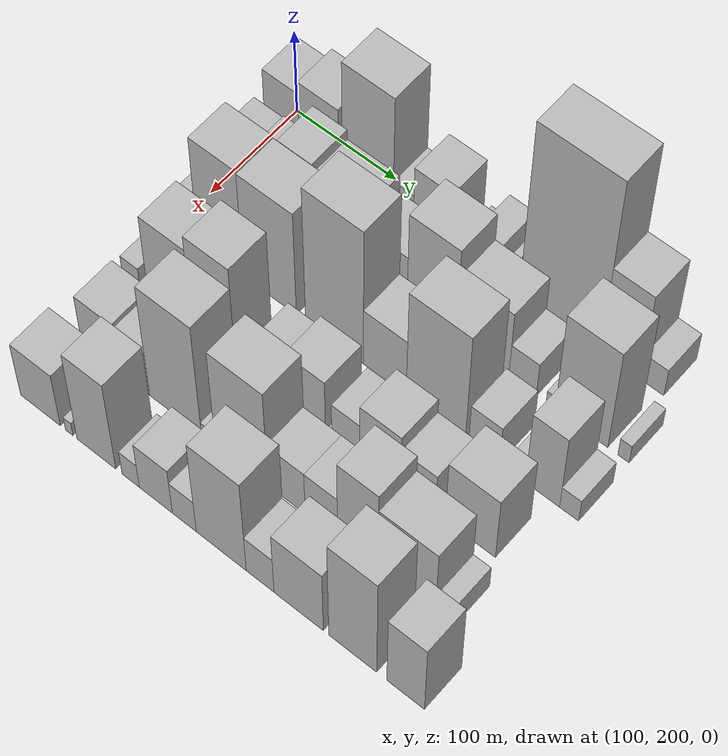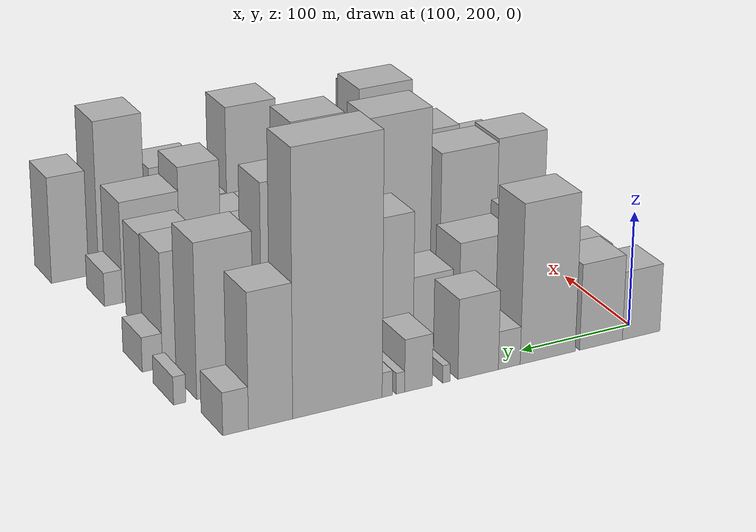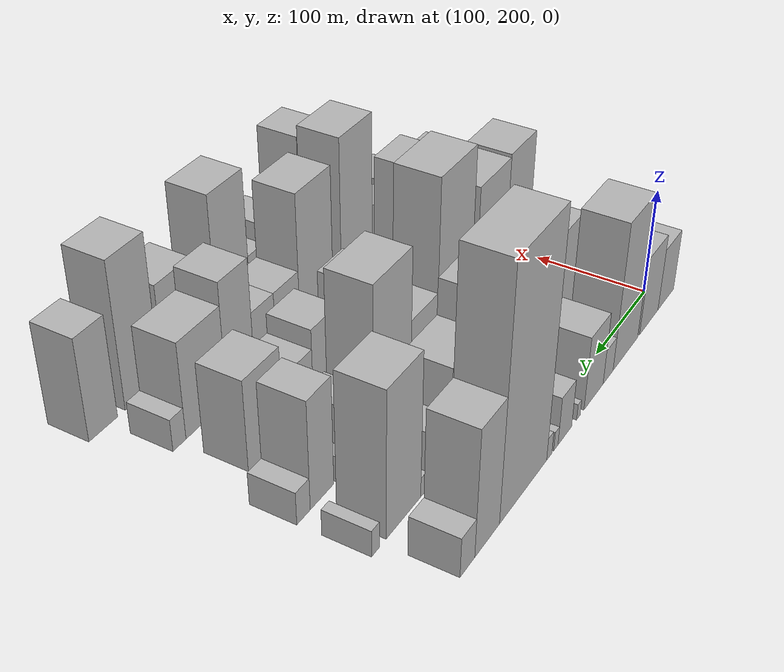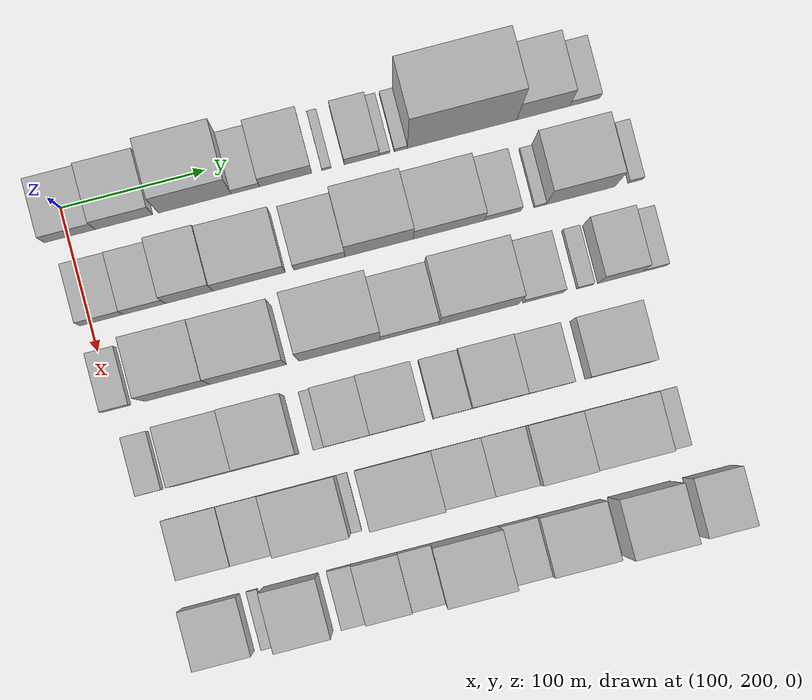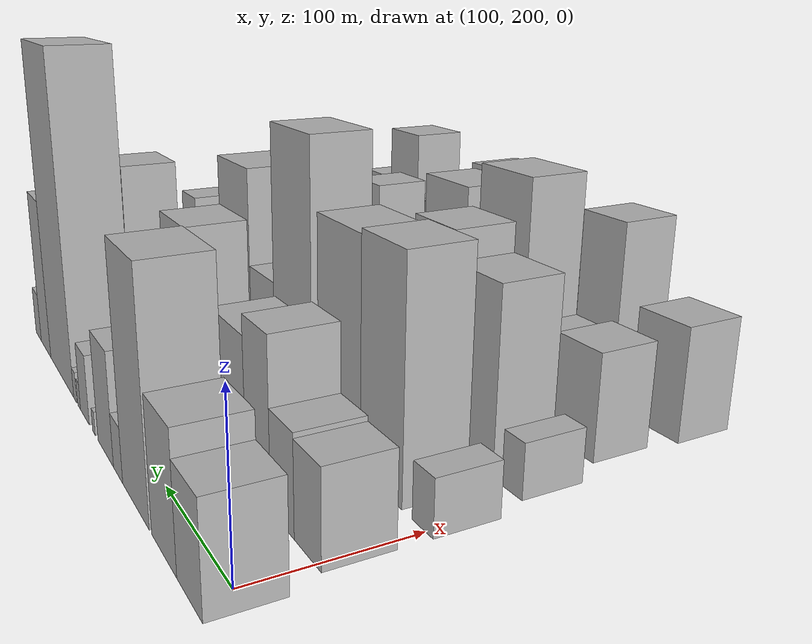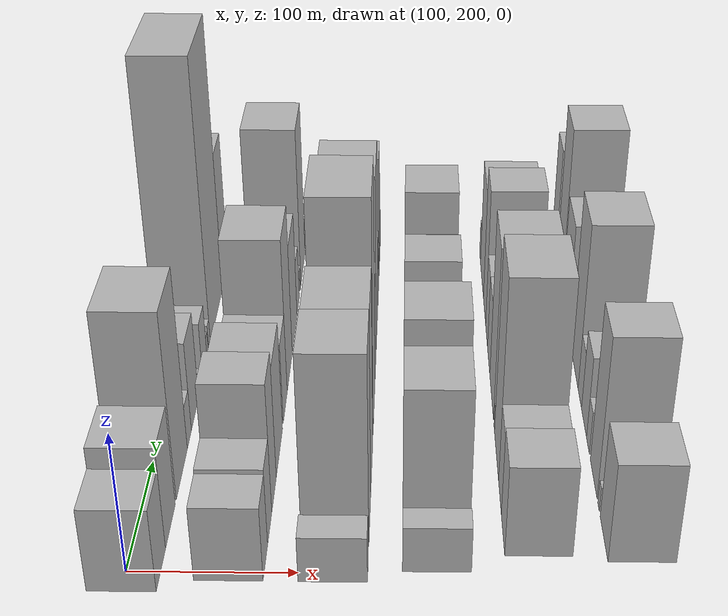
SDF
<sdf version="1.6">
 <world name="default">
  <model name="building_32">
   <static>1</static>
   <pose>100.0000 201.4124 0 0.000000 0.000000 0.000000</pose>
   <link name="link">
    <pose>0 0 30.00 0 0 0</pose>
    <collision name="collision"><geometry><box><size>40.0000 35.3995 60.0000</size></box></geometry></collision>
    <visual name="visual">
     <cast_shadows>0</cast_shadows>
     <geometry><box><size>40.0000 35.3995 60.0000</size></box></geometry>
     <material>
      <script>
       <uri>model://HANNAS_wall/materials/scripts</uri>
       <uri>model://HANNAS_wall/materials/textures</uri>
       <name>vrc/HANNAS_wall</name>
      </script>
     </material>
    </visual>
   </link>
  </model>
  <model name="building_33">
   <static>1</static>
   <pose>100.0000 239.0206 0 0.000000 0.000000 0.000000</pose>
   <link name="link">
    <pose>0 0 37.50 0 0 0</pose>
    <collision name="collision"><geometry><box><size>40.0000 39.8168 75.0000</size></box></geometry></collision>
    <visual name="visual">
     <cast_shadows>0</cast_shadows>
     <geometry><box><size>40.0000 39.8168 75.0000</size></box></geometry>
     <material>
      <script>
       <uri>model://HANNAS_wall/materials/scripts</uri>
       <uri>model://HANNAS_wall/materials/textures</uri>
       <name>vrc/HANNAS_wall</name>
      </script>
     </material>
    </visual>
   </link>
  </model>
  <model name="building_34">
   <static>1</static>
   <pose>100.0000 288.0815 0 0.000000 0.000000 0.000000</pose>
   <link name="link">
    <pose>0 0 69.00 0 0 0</pose>
    <collision name="collision"><geometry><box><size>40.0000 50.3052 138.0000</size></box></geometry></collision>
    <visual name="visual">
     <cast_shadows>0</cast_shadows>
     <geometry><box><size>40.0000 50.3052 138.0000</size></box></geometry>
     <material>
      <script>
       <uri>model://HANNAS_wall/materials/scripts</uri>
       <uri>model://HANNAS_wall/materials/textures</uri>
       <name>vrc/HANNAS_wall</name>
      </script>
     </material>
    </visual>
   </link>
  </model>
  <model name="building_35">
   <static>1</static>
   <pose>100.0000 323.0292 0 0.000000 0.000000 0.000000</pose>
   <link name="link">
    <pose>0 0 16.50 0 0 0</pose>
    <collision name="collision"><geometry><box><size>40.0000 19.5901 33.0000</size></box></geometry></collision>
    <visual name="visual">
     <cast_shadows>0</cast_shadows>
     <geometry><box><size>40.0000 19.5901 33.0000</size></box></geometry>
     <material>
      <script>
       <uri>model://HANNAS_wall/materials/scripts</uri>
       <uri>model://HANNAS_wall/materials/textures</uri>
       <name>vrc/HANNAS_wall</name>
      </script>
     </material>
    </visual>
   </link>
  </model>
  <model name="building_36">
   <static>1</static>
   <pose>100.0000 350.8618 0 0.000000 0.000000 0.000000</pose>
   <link name="link">
    <pose>0 0 34.50 0 0 0</pose>
    <collision name="collision"><geometry><box><size>40.0000 36.0752 69.0000</size></box></geometry></collision>
    <visual name="visual">
     <cast_shadows>0</cast_shadows>
     <geometry><box><size>40.0000 36.0752 69.0000</size></box></geometry>
     <material>
      <script>
       <uri>model://HANNAS_wall/materials/scripts</uri>
       <uri>model://HANNAS_wall/materials/textures</uri>
       <name>vrc/HANNAS_wall</name>
      </script>
     </material>
    </visual>
   </link>
  </model>
  <model name="building_37">
   <static>1</static>
   <pose>100.0000 379.1354 0 0.000000 0.000000 0.000000</pose>
   <link name="link">
    <pose>0 0 7.50 0 0 0</pose>
    <collision name="collision"><geometry><box><size>40.0000 6.4720 15.0000</size></box></geometry></collision>
    <visual name="visual">
     <cast_shadows>0</cast_shadows>
     <geometry><box><size>40.0000 6.4720 15.0000</size></box></geometry>
     <material>
      <script>
       <uri>model://HANNAS_wall/materials/scripts</uri>
       <uri>model://HANNAS_wall/materials/textures</uri>
       <name>vrc/HANNAS_wall</name>
      </script>
     </material>
    </visual>
   </link>
  </model>
  <model name="building_38">
   <static>1</static>
   <pose>100.0000 403.4569 0 0.000000 0.000000 0.000000</pose>
   <link name="link">
    <pose>0 0 22.50 0 0 0</pose>
    <collision name="collision"><geometry><box><size>40.0000 24.1709 45.0000</size></box></geometry></collision>
    <visual name="visual">
     <cast_shadows>0</cast_shadows>
     <geometry><box><size>40.0000 24.1709 45.0000</size></box></geometry>
     <material>
      <script>
       <uri>model://HANNAS_wall/materials/scripts</uri>
       <uri>model://HANNAS_wall/materials/textures</uri>
       <name>vrc/HANNAS_wall</name>
      </script>
     </material>
    </visual>
   </link>
  </model>
  <model name="building_39">
   <static>1</static>
   <pose>100.0000 419.2504 0 0.000000 0.000000 0.000000</pose>
   <link name="link">
    <pose>0 0 9.00 0 0 0</pose>
    <collision name="collision"><geometry><box><size>40.0000 7.4161 18.0000</size></box></geometry></collision>
    <visual name="visual">
     <cast_shadows>0</cast_shadows>
     <geometry><box><size>40.0000 7.4161 18.0000</size></box></geometry>
     <material>
      <script>
       <uri>model://HANNAS_wall/materials/scripts</uri>
       <uri>model://HANNAS_wall/materials/textures</uri>
       <name>vrc/HANNAS_wall</name>
      </script>
     </material>
    </visual>
   </link>
  </model>
  <model name="building_40">
   <static>1</static>
   <pose>100.0000 430.4653 0 0.000000 0.000000 0.000000</pose>
   <link name="link">
    <pose>0 0 10.50 0 0 0</pose>
    <collision name="collision"><geometry><box><size>40.0000 9.0136 21.0000</size></box></geometry></collision>
    <visual name="visual">
     <cast_shadows>0</cast_shadows>
     <geometry><box><size>40.0000 9.0136 21.0000</size></box></geometry>
     <material>
      <script>
       <uri>model://HANNAS_wall/materials/scripts</uri>
       <uri>model://HANNAS_wall/materials/textures</uri>
       <name>vrc/HANNAS_wall</name>
      </script>
     </material>
    </visual>
   </link>
  </model>
  <model name="building_41">
   <static>1</static>
   <pose>100.0000 472.8589 0 0.000000 0.000000 0.000000</pose>
   <link name="link">
    <pose>0 0 111.00 0 0 0</pose>
    <collision name="collision"><geometry><box><size>40.0000 75.7737 222.0000</size></box></geometry></collision>
    <visual name="visual">
     <cast_shadows>0</cast_shadows>
     <geometry><box><size>40.0000 75.7737 222.0000</size></box></geometry>
     <material>
      <script>
       <uri>model://HANNAS_wall/materials/scripts</uri>
       <uri>model://HANNAS_wall/materials/textures</uri>
       <name>vrc/HANNAS_wall</name>
      </script>
     </material>
    </visual>
   </link>
  </model>
  <model name="building_42">
   <static>1</static>
   <pose>100.0000 529.0501 0 0.000000 0.000000 0.000000</pose>
   <link name="link">
    <pose>0 0 57.00 0 0 0</pose>
    <collision name="collision"><geometry><box><size>40.0000 36.6088 114.0000</size></box></geometry></collision>
    <visual name="visual">
     <cast_shadows>0</cast_shadows>
     <geometry><box><size>40.0000 36.6088 114.0000</size></box></geometry>
     <material>
      <script>
       <uri>model://HANNAS_wall/materials/scripts</uri>
       <uri>model://HANNAS_wall/materials/textures</uri>
       <name>vrc/HANNAS_wall</name>
      </script>
     </material>
    </visual>
   </link>
  </model>
  <model name="building_43">
   <static>1</static>
   <pose>100.0000 557.8874 0 0.000000 0.000000 0.000000</pose>
   <link name="link">
    <pose>0 0 18.00 0 0 0</pose>
    <collision name="collision"><geometry><box><size>40.0000 21.0658 36.0000</size></box></geometry></collision>
    <visual name="visual">
     <cast_shadows>0</cast_shadows>
     <geometry><box><size>40.0000 21.0658 36.0000</size></box></geometry>
     <material>
      <script>
       <uri>model://HANNAS_wall/materials/scripts</uri>
       <uri>model://HANNAS_wall/materials/textures</uri>
       <name>vrc/HANNAS_wall</name>
      </script>
     </material>
    </visual>
   </link>
  </model>
  <model name="building_88">
   <static>1</static>
   <pose>160.0000 208.0790 0 0.000000 0.000000 0.000000</pose>
   <link name="link">
    <pose>0 0 27.00 0 0 0</pose>
    <collision name="collision"><geometry><box><size>40.0000 29.9290 54.0000</size></box></geometry></collision>
    <visual name="visual">
     <cast_shadows>0</cast_shadows>
     <geometry><box><size>40.0000 29.9290 54.0000</size></box></geometry>
     <material>
      <script>
       <uri>model://HANNAS_wall/materials/scripts</uri>
       <uri>model://HANNAS_wall/materials/textures</uri>
       <name>vrc/HANNAS_wall</name>
      </script>
     </material>
    </visual>
   </link>
  </model>
  <model name="building_89">
   <static>1</static>
   <pose>160.0000 237.5743 0 0.000000 0.000000 0.000000</pose>
   <link name="link">
    <pose>0 0 28.50 0 0 0</pose>
    <collision name="collision"><geometry><box><size>40.0000 29.0616 57.0000</size></box></geometry></collision>
    <visual name="visual">
     <cast_shadows>0</cast_shadows>
     <geometry><box><size>40.0000 29.0616 57.0000</size></box></geometry>
     <material>
      <script>
       <uri>model://HANNAS_wall/materials/scripts</uri>
       <uri>model://HANNAS_wall/materials/textures</uri>
       <name>vrc/HANNAS_wall</name>
      </script>
     </material>
    </visual>
   </link>
  </model>
  <model name="building_90">
   <static>1</static>
   <pose>160.0000 268.7198 0 0.000000 0.000000 0.000000</pose>
   <link name="link">
    <pose>0 0 48.00 0 0 0</pose>
    <collision name="collision"><geometry><box><size>40.0000 33.2294 96.0000</size></box></geometry></collision>
    <visual name="visual">
     <cast_shadows>0</cast_shadows>
     <geometry><box><size>40.0000 33.2294 96.0000</size></box></geometry>
     <material>
      <script>
       <uri>model://HANNAS_wall/materials/scripts</uri>
       <uri>model://HANNAS_wall/materials/textures</uri>
       <name>vrc/HANNAS_wall</name>
      </script>
     </material>
    </visual>
   </link>
  </model>
  <model name="building_91">
   <static>1</static>
   <pose>160.0000 310.1979 0 0.000000 0.000000 0.000000</pose>
   <link name="link">
    <pose>0 0 42.00 0 0 0</pose>
    <collision name="collision"><geometry><box><size>40.0000 49.7267 84.0000</size></box></geometry></collision>
    <visual name="visual">
     <cast_shadows>0</cast_shadows>
     <geometry><box><size>40.0000 49.7267 84.0000</size></box></geometry>
     <material>
      <script>
       <uri>model://HANNAS_wall/materials/scripts</uri>
       <uri>model://HANNAS_wall/materials/textures</uri>
       <name>vrc/HANNAS_wall</name>
      </script>
     </material>
    </visual>
   </link>
  </model>
  <model name="building_92">
   <static>1</static>
   <pose>160.0000 358.7361 0 0.000000 0.000000 0.000000</pose>
   <link name="link">
    <pose>0 0 31.50 0 0 0</pose>
    <collision name="collision"><geometry><box><size>40.0000 35.3497 63.0000</size></box></geometry></collision>
    <visual name="visual">
     <cast_shadows>0</cast_shadows>
     <geometry><box><size>40.0000 35.3497 63.0000</size></box></geometry>
     <material>
      <script>
       <uri>model://HANNAS_wall/materials/scripts</uri>
       <uri>model://HANNAS_wall/materials/textures</uri>
       <name>vrc/HANNAS_wall</name>
      </script>
     </material>
    </visual>
   </link>
  </model>
  <model name="building_93">
   <static>1</static>
   <pose>160.0000 399.9373 0 0.000000 0.000000 0.000000</pose>
   <link name="link">
    <pose>0 0 60.00 0 0 0</pose>
    <collision name="collision"><geometry><box><size>40.0000 47.0527 120.0000</size></box></geometry></collision>
    <visual name="visual">
     <cast_shadows>0</cast_shadows>
     <geometry><box><size>40.0000 47.0527 120.0000</size></box></geometry>
     <material>
      <script>
       <uri>model://HANNAS_wall/materials/scripts</uri>
       <uri>model://HANNAS_wall/materials/textures</uri>
       <name>vrc/HANNAS_wall</name>
      </script>
     </material>
    </visual>
   </link>
  </model>
  <model name="building_94">
   <static>1</static>
   <pose>160.0000 448.0725 0 0.000000 0.000000 0.000000</pose>
   <link name="link">
    <pose>0 0 43.50 0 0 0</pose>
    <collision name="collision"><geometry><box><size>40.0000 49.2176 87.0000</size></box></geometry></collision>
    <visual name="visual">
     <cast_shadows>0</cast_shadows>
     <geometry><box><size>40.0000 49.2176 87.0000</size></box></geometry>
     <material>
      <script>
       <uri>model://HANNAS_wall/materials/scripts</uri>
       <uri>model://HANNAS_wall/materials/textures</uri>
       <name>vrc/HANNAS_wall</name>
      </script>
     </material>
    </visual>
   </link>
  </model>
  <model name="building_95">
   <static>1</static>
   <pose>160.0000 485.3931 0 0.000000 0.000000 0.000000</pose>
   <link name="link">
    <pose>0 0 22.50 0 0 0</pose>
    <collision name="collision"><geometry><box><size>40.0000 25.4237 45.0000</size></box></geometry></collision>
    <visual name="visual">
     <cast_shadows>0</cast_shadows>
     <geometry><box><size>40.0000 25.4237 45.0000</size></box></geometry>
     <material>
      <script>
       <uri>model://HANNAS_wall/materials/scripts</uri>
       <uri>model://HANNAS_wall/materials/textures</uri>
       <name>vrc/HANNAS_wall</name>
      </script>
     </material>
    </visual>
   </link>
  </model>
  <model name="building_96">
   <static>1</static>
   <pose>160.0000 511.2469 0 0.000000 0.000000 0.000000</pose>
   <link name="link">
    <pose>0 0 9.00 0 0 0</pose>
    <collision name="collision"><geometry><box><size>40.0000 8.2840 18.0000</size></box></geometry></collision>
    <visual name="visual">
     <cast_shadows>0</cast_shadows>
     <geometry><box><size>40.0000 8.2840 18.0000</size></box></geometry>
     <material>
      <script>
       <uri>model://HANNAS_wall/materials/scripts</uri>
       <uri>model://HANNAS_wall/materials/textures</uri>
       <name>vrc/HANNAS_wall</name>
      </script>
     </material>
    </visual>
   </link>
  </model>
  <model name="building_97">
   <static>1</static>
   <pose>160.0000 539.3332 0 0.000000 0.000000 0.000000</pose>
   <link name="link">
    <pose>0 0 66.00 0 0 0</pose>
    <collision name="collision"><geometry><box><size>40.0000 47.8885 132.0000</size></box></geometry></collision>
    <visual name="visual">
     <cast_shadows>0</cast_shadows>
     <geometry><box><size>40.0000 47.8885 132.0000</size></box></geometry>
     <material>
      <script>
       <uri>model://HANNAS_wall/materials/scripts</uri>
       <uri>model://HANNAS_wall/materials/textures</uri>
       <name>vrc/HANNAS_wall</name>
      </script>
     </material>
    </visual>
   </link>
  </model>
  <model name="building_98">
   <static>1</static>
   <pose>160.0000 577.3981 0 0.000000 0.000000 0.000000</pose>
   <link name="link">
    <pose>0 0 12.00 0 0 0</pose>
    <collision name="collision"><geometry><box><size>40.0000 10.2413 24.0000</size></box></geometry></collision>
    <visual name="visual">
     <cast_shadows>0</cast_shadows>
     <geometry><box><size>40.0000 10.2413 24.0000</size></box></geometry>
     <material>
      <script>
       <uri>model://HANNAS_wall/materials/scripts</uri>
       <uri>model://HANNAS_wall/materials/textures</uri>
       <name>vrc/HANNAS_wall</name>
      </script>
     </material>
    </visual>
   </link>
  </model>
  <model name="building_145">
   <static>1</static>
   <pose>220.0000 202.7504 0 0.000000 0.000000 0.000000</pose>
   <link name="link">
    <pose>0 0 16.50 0 0 0</pose>
    <collision name="collision"><geometry><box><size>40.0000 19.7595 33.0000</size></box></geometry></collision>
    <visual name="visual">
     <cast_shadows>0</cast_shadows>
     <geometry><box><size>40.0000 19.7595 33.0000</size></box></geometry>
     <material>
      <script>
       <uri>model://HANNAS_wall/materials/scripts</uri>
       <uri>model://HANNAS_wall/materials/textures</uri>
       <name>vrc/HANNAS_wall</name>
      </script>
     </material>
    </visual>
   </link>
  </model>
  <model name="building_146">
   <static>1</static>
   <pose>220.0000 245.2112 0 0.000000 0.000000 0.000000</pose>
   <link name="link">
    <pose>0 0 69.00 0 0 0</pose>
    <collision name="collision"><geometry><box><size>40.0000 45.1622 138.0000</size></box></geometry></collision>
    <visual name="visual">
     <cast_shadows>0</cast_shadows>
     <geometry><box><size>40.0000 45.1622 138.0000</size></box></geometry>
     <material>
      <script>
       <uri>model://HANNAS_wall/materials/scripts</uri>
       <uri>model://HANNAS_wall/materials/textures</uri>
       <name>vrc/HANNAS_wall</name>
      </script>
     </material>
    </visual>
   </link>
  </model>
  <model name="building_147">
   <static>1</static>
   <pose>220.0000 294.0206 0 0.000000 0.000000 0.000000</pose>
   <link name="link">
    <pose>0 0 67.50 0 0 0</pose>
    <collision name="collision"><geometry><box><size>40.0000 52.4565 135.0000</size></box></geometry></collision>
    <visual name="visual">
     <cast_shadows>0</cast_shadows>
     <geometry><box><size>40.0000 52.4565 135.0000</size></box></geometry>
     <material>
      <script>
       <uri>model://HANNAS_wall/materials/scripts</uri>
       <uri>model://HANNAS_wall/materials/textures</uri>
       <name>vrc/HANNAS_wall</name>
      </script>
     </material>
    </visual>
   </link>
  </model>
  <model name="building_148">
   <static>1</static>
   <pose>220.0000 357.1074 0 0.000000 0.000000 0.000000</pose>
   <link name="link">
    <pose>0 0 88.50 0 0 0</pose>
    <collision name="collision"><geometry><box><size>40.0000 55.7172 177.0000</size></box></geometry></collision>
    <visual name="visual">
     <cast_shadows>0</cast_shadows>
     <geometry><box><size>40.0000 55.7172 177.0000</size></box></geometry>
     <material>
      <script>
       <uri>model://HANNAS_wall/materials/scripts</uri>
       <uri>model://HANNAS_wall/materials/textures</uri>
       <name>vrc/HANNAS_wall</name>
      </script>
     </material>
    </visual>
   </link>
  </model>
  <model name="building_149">
   <static>1</static>
   <pose>220.0000 405.1855 0 0.000000 0.000000 0.000000</pose>
   <link name="link">
    <pose>0 0 37.50 0 0 0</pose>
    <collision name="collision"><geometry><box><size>40.0000 40.4389 75.0000</size></box></geometry></collision>
    <visual name="visual">
     <cast_shadows>0</cast_shadows>
     <geometry><box><size>40.0000 40.4389 75.0000</size></box></geometry>
     <material>
      <script>
       <uri>model://HANNAS_wall/materials/scripts</uri>
       <uri>model://HANNAS_wall/materials/textures</uri>
       <name>vrc/HANNAS_wall</name>
      </script>
     </material>
    </visual>
   </link>
  </model>
  <model name="building_150">
   <static>1</static>
   <pose>220.0000 453.0860 0 0.000000 0.000000 0.000000</pose>
   <link name="link">
    <pose>0 0 70.50 0 0 0</pose>
    <collision name="collision"><geometry><box><size>40.0000 55.3623 141.0000</size></box></geometry></collision>
    <visual name="visual">
     <cast_shadows>0</cast_shadows>
     <geometry><box><size>40.0000 55.3623 141.0000</size></box></geometry>
     <material>
      <script>
       <uri>model://HANNAS_wall/materials/scripts</uri>
       <uri>model://HANNAS_wall/materials/textures</uri>
       <name>vrc/HANNAS_wall</name>
      </script>
     </material>
    </visual>
   </link>
  </model>
  <model name="building_151">
   <static>1</static>
   <pose>220.0000 497.8865 0 0.000000 0.000000 0.000000</pose>
   <link name="link">
    <pose>0 0 25.50 0 0 0</pose>
    <collision name="collision"><geometry><box><size>40.0000 28.2386 51.0000</size></box></geometry></collision>
    <visual name="visual">
     <cast_shadows>0</cast_shadows>
     <geometry><box><size>40.0000 28.2386 51.0000</size></box></geometry>
     <material>
      <script>
       <uri>model://HANNAS_wall/materials/scripts</uri>
       <uri>model://HANNAS_wall/materials/textures</uri>
       <name>vrc/HANNAS_wall</name>
      </script>
     </material>
    </visual>
   </link>
  </model>
  <model name="building_152">
   <static>1</static>
   <pose>220.0000 526.7714 0 0.000000 0.000000 0.000000</pose>
   <link name="link">
    <pose>0 0 12.00 0 0 0</pose>
    <collision name="collision"><geometry><box><size>40.0000 11.5313 24.0000</size></box></geometry></collision>
    <visual name="visual">
     <cast_shadows>0</cast_shadows>
     <geometry><box><size>40.0000 11.5313 24.0000</size></box></geometry>
     <material>
      <script>
       <uri>model://HANNAS_wall/materials/scripts</uri>
       <uri>model://HANNAS_wall/materials/textures</uri>
       <name>vrc/HANNAS_wall</name>
      </script>
     </material>
    </visual>
   </link>
  </model>
  <model name="building_153">
   <static>1</static>
   <pose>220.0000 550.8953 0 0.000000 0.000000 0.000000</pose>
   <link name="link">
    <pose>0 0 49.50 0 0 0</pose>
    <collision name="collision"><geometry><box><size>40.0000 30.7163 99.0000</size></box></geometry></collision>
    <visual name="visual">
     <cast_shadows>0</cast_shadows>
     <geometry><box><size>40.0000 30.7163 99.0000</size></box></geometry>
     <material>
      <script>
       <uri>model://HANNAS_wall/materials/scripts</uri>
       <uri>model://HANNAS_wall/materials/textures</uri>
       <name>vrc/HANNAS_wall</name>
      </script>
     </material>
    </visual>
   </link>
  </model>
  <model name="building_154">
   <static>1</static>
   <pose>220.0000 574.7846 0 0.000000 0.000000 0.000000</pose>
   <link name="link">
    <pose>0 0 15.00 0 0 0</pose>
    <collision name="collision"><geometry><box><size>40.0000 17.0623 30.0000</size></box></geometry></collision>
    <visual name="visual">
     <cast_shadows>0</cast_shadows>
     <geometry><box><size>40.0000 17.0623 30.0000</size></box></geometry>
     <material>
      <script>
       <uri>model://HANNAS_wall/materials/scripts</uri>
       <uri>model://HANNAS_wall/materials/textures</uri>
       <name>vrc/HANNAS_wall</name>
      </script>
     </material>
    </visual>
   </link>
  </model>
  <model name="building_194">
   <static>1</static>
   <pose>280.0000 210.6964 0 0.000000 0.000000 0.000000</pose>
   <link name="link">
    <pose>0 0 16.50 0 0 0</pose>
    <collision name="collision"><geometry><box><size>40.0000 17.6545 33.0000</size></box></geometry></collision>
    <visual name="visual">
     <cast_shadows>0</cast_shadows>
     <geometry><box><size>40.0000 17.6545 33.0000</size></box></geometry>
     <material>
      <script>
       <uri>model://HANNAS_wall/materials/scripts</uri>
       <uri>model://HANNAS_wall/materials/textures</uri>
       <name>vrc/HANNAS_wall</name>
      </script>
     </material>
    </visual>
   </link>
  </model>
  <model name="building_195">
   <static>1</static>
   <pose>280.0000 249.3085 0 0.000000 0.000000 0.000000</pose>
   <link name="link">
    <pose>0 0 55.50 0 0 0</pose>
    <collision name="collision"><geometry><box><size>40.0000 43.5696 111.0000</size></box></geometry></collision>
    <visual name="visual">
     <cast_shadows>0</cast_shadows>
     <geometry><box><size>40.0000 43.5696 111.0000</size></box></geometry>
     <material>
      <script>
       <uri>model://HANNAS_wall/materials/scripts</uri>
       <uri>model://HANNAS_wall/materials/textures</uri>
       <name>vrc/HANNAS_wall</name>
      </script>
     </material>
    </visual>
   </link>
  </model>
  <model name="building_196">
   <static>1</static>
   <pose>280.0000 292.2337 0 0.000000 0.000000 0.000000</pose>
   <link name="link">
    <pose>0 0 64.50 0 0 0</pose>
    <collision name="collision"><geometry><box><size>40.0000 42.2808 129.0000</size></box></geometry></collision>
    <visual name="visual">
     <cast_shadows>0</cast_shadows>
     <geometry><box><size>40.0000 42.2808 129.0000</size></box></geometry>
     <material>
      <script>
       <uri>model://HANNAS_wall/materials/scripts</uri>
       <uri>model://HANNAS_wall/materials/textures</uri>
       <name>vrc/HANNAS_wall</name>
      </script>
     </material>
    </visual>
   </link>
  </model>
  <model name="building_197">
   <static>1</static>
   <pose>280.0000 327.2347 0 0.000000 0.000000 0.000000</pose>
   <link name="link">
    <pose>0 0 9.00 0 0 0</pose>
    <collision name="collision"><geometry><box><size>40.0000 7.7213 18.0000</size></box></geometry></collision>
    <visual name="visual">
     <cast_shadows>0</cast_shadows>
     <geometry><box><size>40.0000 7.7213 18.0000</size></box></geometry>
     <material>
      <script>
       <uri>model://HANNAS_wall/materials/scripts</uri>
       <uri>model://HANNAS_wall/materials/textures</uri>
       <name>vrc/HANNAS_wall</name>
      </script>
     </material>
    </visual>
   </link>
  </model>
  <model name="building_198">
   <static>1</static>
   <pose>280.0000 346.6897 0 0.000000 0.000000 0.000000</pose>
   <link name="link">
    <pose>0 0 27.00 0 0 0</pose>
    <collision name="collision"><geometry><box><size>40.0000 31.1886 54.0000</size></box></geometry></collision>
    <visual name="visual">
     <cast_shadows>0</cast_shadows>
     <geometry><box><size>40.0000 31.1886 54.0000</size></box></geometry>
     <material>
      <script>
       <uri>model://HANNAS_wall/materials/scripts</uri>
       <uri>model://HANNAS_wall/materials/textures</uri>
       <name>vrc/HANNAS_wall</name>
      </script>
     </material>
    </visual>
   </link>
  </model>
  <model name="building_199">
   <static>1</static>
   <pose>280.0000 381.0096 0 0.000000 0.000000 0.000000</pose>
   <link name="link">
    <pose>0 0 34.50 0 0 0</pose>
    <collision name="collision"><geometry><box><size>40.0000 37.4512 69.0000</size></box></geometry></collision>
    <visual name="visual">
     <cast_shadows>0</cast_shadows>
     <geometry><box><size>40.0000 37.4512 69.0000</size></box></geometry>
     <material>
      <script>
       <uri>model://HANNAS_wall/materials/scripts</uri>
       <uri>model://HANNAS_wall/materials/textures</uri>
       <name>vrc/HANNAS_wall</name>
      </script>
     </material>
    </visual>
   </link>
  </model>
  <model name="building_200">
   <static>1</static>
   <pose>280.0000 418.8208 0 0.000000 0.000000 0.000000</pose>
   <link name="link">
    <pose>0 0 22.50 0 0 0</pose>
    <collision name="collision"><geometry><box><size>40.0000 26.1712 45.0000</size></box></geometry></collision>
    <visual name="visual">
     <cast_shadows>0</cast_shadows>
     <geometry><box><size>40.0000 26.1712 45.0000</size></box></geometry>
     <material>
      <script>
       <uri>model://HANNAS_wall/materials/scripts</uri>
       <uri>model://HANNAS_wall/materials/textures</uri>
       <name>vrc/HANNAS_wall</name>
      </script>
     </material>
    </visual>
   </link>
  </model>
  <model name="building_201">
   <static>1</static>
   <pose>280.0000 450.8995 0 0.000000 0.000000 0.000000</pose>
   <link name="link">
    <pose>0 0 36.00 0 0 0</pose>
    <collision name="collision"><geometry><box><size>40.0000 37.9861 72.0000</size></box></geometry></collision>
    <visual name="visual">
     <cast_shadows>0</cast_shadows>
     <geometry><box><size>40.0000 37.9861 72.0000</size></box></geometry>
     <material>
      <script>
       <uri>model://HANNAS_wall/materials/scripts</uri>
       <uri>model://HANNAS_wall/materials/textures</uri>
       <name>vrc/HANNAS_wall</name>
      </script>
     </material>
    </visual>
   </link>
  </model>
  <model name="building_202">
   <static>1</static>
   <pose>280.0000 485.9661 0 0.000000 0.000000 0.000000</pose>
   <link name="link">
    <pose>0 0 27.00 0 0 0</pose>
    <collision name="collision"><geometry><box><size>40.0000 32.1472 54.0000</size></box></geometry></collision>
    <visual name="visual">
     <cast_shadows>0</cast_shadows>
     <geometry><box><size>40.0000 32.1472 54.0000</size></box></geometry>
     <material>
      <script>
       <uri>model://HANNAS_wall/materials/scripts</uri>
       <uri>model://HANNAS_wall/materials/textures</uri>
       <name>vrc/HANNAS_wall</name>
      </script>
     </material>
    </visual>
   </link>
  </model>
  <model name="building_203">
   <static>1</static>
   <pose>280.0000 533.6090 0 0.000000 0.000000 0.000000</pose>
   <link name="link">
    <pose>0 0 42.00 0 0 0</pose>
    <collision name="collision"><geometry><box><size>40.0000 45.1386 84.0000</size></box></geometry></collision>
    <visual name="visual">
     <cast_shadows>0</cast_shadows>
     <geometry><box><size>40.0000 45.1386 84.0000</size></box></geometry>
     <material>
      <script>
       <uri>model://HANNAS_wall/materials/scripts</uri>
       <uri>model://HANNAS_wall/materials/textures</uri>
       <name>vrc/HANNAS_wall</name>
      </script>
     </material>
    </visual>
   </link>
  </model>
  <model name="building_245">
   <static>1</static>
   <pose>340.0000 234.2090 0 0.000000 0.000000 0.000000</pose>
   <link name="link">
    <pose>0 0 33.00 0 0 0</pose>
    <collision name="collision"><geometry><box><size>40.0000 36.4868 66.0000</size></box></geometry></collision>
    <visual name="visual">
     <cast_shadows>0</cast_shadows>
     <geometry><box><size>40.0000 36.4868 66.0000</size></box></geometry>
     <material>
      <script>
       <uri>model://HANNAS_wall/materials/scripts</uri>
       <uri>model://HANNAS_wall/materials/textures</uri>
       <name>vrc/HANNAS_wall</name>
      </script>
     </material>
    </visual>
   </link>
  </model>
  <model name="building_246">
   <static>1</static>
   <pose>340.0000 267.9614 0 0.000000 0.000000 0.000000</pose>
   <link name="link">
    <pose>0 0 30.00 0 0 0</pose>
    <collision name="collision"><geometry><box><size>40.0000 31.0181 60.0000</size></box></geometry></collision>
    <visual name="visual">
     <cast_shadows>0</cast_shadows>
     <geometry><box><size>40.0000 31.0181 60.0000</size></box></geometry>
     <material>
      <script>
       <uri>model://HANNAS_wall/materials/scripts</uri>
       <uri>model://HANNAS_wall/materials/textures</uri>
       <name>vrc/HANNAS_wall</name>
      </script>
     </material>
    </visual>
   </link>
  </model>
  <model name="building_247">
   <static>1</static>
   <pose>340.0000 308.6376 0 0.000000 0.000000 0.000000</pose>
   <link name="link">
    <pose>0 0 75.00 0 0 0</pose>
    <collision name="collision"><geometry><box><size>40.0000 50.3343 150.0000</size></box></geometry></collision>
    <visual name="visual">
     <cast_shadows>0</cast_shadows>
     <geometry><box><size>40.0000 50.3343 150.0000</size></box></geometry>
     <material>
      <script>
       <uri>model://HANNAS_wall/materials/scripts</uri>
       <uri>model://HANNAS_wall/materials/textures</uri>
       <name>vrc/HANNAS_wall</name>
      </script>
     </material>
    </visual>
   </link>
  </model>
  <model name="building_248">
   <static>1</static>
   <pose>340.0000 337.4750 0 0.000000 0.000000 0.000000</pose>
   <link name="link">
    <pose>0 0 9.00 0 0 0</pose>
    <collision name="collision"><geometry><box><size>40.0000 7.3404 18.0000</size></box></geometry></collision>
    <visual name="visual">
     <cast_shadows>0</cast_shadows>
     <geometry><box><size>40.0000 7.3404 18.0000</size></box></geometry>
     <material>
      <script>
       <uri>model://HANNAS_wall/materials/scripts</uri>
       <uri>model://HANNAS_wall/materials/textures</uri>
       <name>vrc/HANNAS_wall</name>
      </script>
     </material>
    </visual>
   </link>
  </model>
  <model name="building_249">
   <static>1</static>
   <pose>340.0000 372.2615 0 0.000000 0.000000 0.000000</pose>
   <link name="link">
    <pose>0 0 66.00 0 0 0</pose>
    <collision name="collision"><geometry><box><size>40.0000 50.2326 132.0000</size></box></geometry></collision>
    <visual name="visual">
     <cast_shadows>0</cast_shadows>
     <geometry><box><size>40.0000 50.2326 132.0000</size></box></geometry>
     <material>
      <script>
       <uri>model://HANNAS_wall/materials/scripts</uri>
       <uri>model://HANNAS_wall/materials/textures</uri>
       <name>vrc/HANNAS_wall</name>
      </script>
     </material>
    </visual>
   </link>
  </model>
  <model name="building_250">
   <static>1</static>
   <pose>340.0000 414.7727 0 0.000000 0.000000 0.000000</pose>
   <link name="link">
    <pose>0 0 30.00 0 0 0</pose>
    <collision name="collision"><geometry><box><size>40.0000 34.7898 60.0000</size></box></geometry></collision>
    <visual name="visual">
     <cast_shadows>0</cast_shadows>
     <geometry><box><size>40.0000 34.7898 60.0000</size></box></geometry>
     <material>
      <script>
       <uri>model://HANNAS_wall/materials/scripts</uri>
       <uri>model://HANNAS_wall/materials/textures</uri>
       <name>vrc/HANNAS_wall</name>
      </script>
     </material>
    </visual>
   </link>
  </model>
  <model name="building_251">
   <static>1</static>
   <pose>340.0000 447.2426 0 0.000000 0.000000 0.000000</pose>
   <link name="link">
    <pose>0 0 30.00 0 0 0</pose>
    <collision name="collision"><geometry><box><size>40.0000 30.1500 60.0000</size></box></geometry></collision>
    <visual name="visual">
     <cast_shadows>0</cast_shadows>
     <geometry><box><size>40.0000 30.1500 60.0000</size></box></geometry>
     <material>
      <script>
       <uri>model://HANNAS_wall/materials/scripts</uri>
       <uri>model://HANNAS_wall/materials/textures</uri>
       <name>vrc/HANNAS_wall</name>
      </script>
     </material>
    </visual>
   </link>
  </model>
  <model name="building_252">
   <static>1</static>
   <pose>340.0000 480.8498 0 0.000000 0.000000 0.000000</pose>
   <link name="link">
    <pose>0 0 55.50 0 0 0</pose>
    <collision name="collision"><geometry><box><size>40.0000 37.0644 111.0000</size></box></geometry></collision>
    <visual name="visual">
     <cast_shadows>0</cast_shadows>
     <geometry><box><size>40.0000 37.0644 111.0000</size></box></geometry>
     <material>
      <script>
       <uri>model://HANNAS_wall/materials/scripts</uri>
       <uri>model://HANNAS_wall/materials/textures</uri>
       <name>vrc/HANNAS_wall</name>
      </script>
     </material>
    </visual>
   </link>
  </model>
  <model name="building_253">
   <static>1</static>
   <pose>340.0000 525.3029 0 0.000000 0.000000 0.000000</pose>
   <link name="link">
    <pose>0 0 45.00 0 0 0</pose>
    <collision name="collision"><geometry><box><size>40.0000 51.8419 90.0000</size></box></geometry></collision>
    <visual name="visual">
     <cast_shadows>0</cast_shadows>
     <geometry><box><size>40.0000 51.8419 90.0000</size></box></geometry>
     <material>
      <script>
       <uri>model://HANNAS_wall/materials/scripts</uri>
       <uri>model://HANNAS_wall/materials/textures</uri>
       <name>vrc/HANNAS_wall</name>
      </script>
     </material>
    </visual>
   </link>
  </model>
  <model name="building_254">
   <static>1</static>
   <pose>340.0000 559.1062 0 0.000000 0.000000 0.000000</pose>
   <link name="link">
    <pose>0 0 15.00 0 0 0</pose>
    <collision name="collision"><geometry><box><size>40.0000 15.7648 30.0000</size></box></geometry></collision>
    <visual name="visual">
     <cast_shadows>0</cast_shadows>
     <geometry><box><size>40.0000 15.7648 30.0000</size></box></geometry>
     <material>
      <script>
       <uri>model://HANNAS_wall/materials/scripts</uri>
       <uri>model://HANNAS_wall/materials/textures</uri>
       <name>vrc/HANNAS_wall</name>
      </script>
     </material>
    </visual>
   </link>
  </model>
  <model name="building_298">
   <static>1</static>
   <pose>400.0000 231.5066 0 0.000000 0.000000 0.000000</pose>
   <link name="link">
    <pose>0 0 36.00 0 0 0</pose>
    <collision name="collision"><geometry><box><size>40.0000 39.6497 72.0000</size></box></geometry></collision>
    <visual name="visual">
     <cast_shadows>0</cast_shadows>
     <geometry><box><size>40.0000 39.6497 72.0000</size></box></geometry>
     <material>
      <script>
       <uri>model://HANNAS_wall/materials/scripts</uri>
       <uri>model://HANNAS_wall/materials/textures</uri>
       <name>vrc/HANNAS_wall</name>
      </script>
     </material>
    </visual>
   </link>
  </model>
  <model name="building_299">
   <static>1</static>
   <pose>400.0000 260.0668 0 0.000000 0.000000 0.000000</pose>
   <link name="link">
    <pose>0 0 9.00 0 0 0</pose>
    <collision name="collision"><geometry><box><size>40.0000 7.4707 18.0000</size></box></geometry></collision>
    <visual name="visual">
     <cast_shadows>0</cast_shadows>
     <geometry><box><size>40.0000 7.4707 18.0000</size></box></geometry>
     <material>
      <script>
       <uri>model://HANNAS_wall/materials/scripts</uri>
       <uri>model://HANNAS_wall/materials/textures</uri>
       <name>vrc/HANNAS_wall</name>
      </script>
     </material>
    </visual>
   </link>
  </model>
  <model name="building_300">
   <static>1</static>
   <pose>400.0000 286.7463 0 0.000000 0.000000 0.000000</pose>
   <link name="link">
    <pose>0 0 60.00 0 0 0</pose>
    <collision name="collision"><geometry><box><size>40.0000 37.8881 120.0000</size></box></geometry></collision>
    <visual name="visual">
     <cast_shadows>0</cast_shadows>
     <geometry><box><size>40.0000 37.8881 120.0000</size></box></geometry>
     <material>
      <script>
       <uri>model://HANNAS_wall/materials/scripts</uri>
       <uri>model://HANNAS_wall/materials/textures</uri>
       <name>vrc/HANNAS_wall</name>
      </script>
     </material>
    </visual>
   </link>
  </model>
  <model name="building_301">
   <static>1</static>
   <pose>400.0000 320.0568 0 0.000000 0.000000 0.000000</pose>
   <link name="link">
    <pose>0 0 16.50 0 0 0</pose>
    <collision name="collision"><geometry><box><size>40.0000 16.7330 33.0000</size></box></geometry></collision>
    <visual name="visual">
     <cast_shadows>0</cast_shadows>
     <geometry><box><size>40.0000 16.7330 33.0000</size></box></geometry>
     <material>
      <script>
       <uri>model://HANNAS_wall/materials/scripts</uri>
       <uri>model://HANNAS_wall/materials/textures</uri>
       <name>vrc/HANNAS_wall</name>
      </script>
     </material>
    </visual>
   </link>
  </model>
  <model name="building_302">
   <static>1</static>
   <pose>400.0000 344.2530 0 0.000000 0.000000 0.000000</pose>
   <link name="link">
    <pose>0 0 31.50 0 0 0</pose>
    <collision name="collision"><geometry><box><size>40.0000 31.6592 63.0000</size></box></geometry></collision>
    <visual name="visual">
     <cast_shadows>0</cast_shadows>
     <geometry><box><size>40.0000 31.6592 63.0000</size></box></geometry>
     <material>
      <script>
       <uri>model://HANNAS_wall/materials/scripts</uri>
       <uri>model://HANNAS_wall/materials/textures</uri>
       <name>vrc/HANNAS_wall</name>
      </script>
     </material>
    </visual>
   </link>
  </model>
  <model name="building_303">
   <static>1</static>
   <pose>400.0000 371.4568 0 0.000000 0.000000 0.000000</pose>
   <link name="link">
    <pose>0 0 22.50 0 0 0</pose>
    <collision name="collision"><geometry><box><size>40.0000 22.7484 45.0000</size></box></geometry></collision>
    <visual name="visual">
     <cast_shadows>0</cast_shadows>
     <geometry><box><size>40.0000 22.7484 45.0000</size></box></geometry>
     <material>
      <script>
       <uri>model://HANNAS_wall/materials/scripts</uri>
       <uri>model://HANNAS_wall/materials/textures</uri>
       <name>vrc/HANNAS_wall</name>
      </script>
     </material>
    </visual>
   </link>
  </model>
  <model name="building_304">
   <static>1</static>
   <pose>400.0000 406.2175 0 0.000000 0.000000 0.000000</pose>
   <link name="link">
    <pose>0 0 64.50 0 0 0</pose>
    <collision name="collision"><geometry><box><size>40.0000 46.7731 129.0000</size></box></geometry></collision>
    <visual name="visual">
     <cast_shadows>0</cast_shadows>
     <geometry><box><size>40.0000 46.7731 129.0000</size></box></geometry>
     <material>
      <script>
       <uri>model://HANNAS_wall/materials/scripts</uri>
       <uri>model://HANNAS_wall/materials/textures</uri>
       <name>vrc/HANNAS_wall</name>
      </script>
     </material>
    </visual>
   </link>
  </model>
  <model name="building_305">
   <static>1</static>
   <pose>400.0000 442.4819 0 0.000000 0.000000 0.000000</pose>
   <link name="link">
    <pose>0 0 25.50 0 0 0</pose>
    <collision name="collision"><geometry><box><size>40.0000 25.7559 51.0000</size></box></geometry></collision>
    <visual name="visual">
     <cast_shadows>0</cast_shadows>
     <geometry><box><size>40.0000 25.7559 51.0000</size></box></geometry>
     <material>
      <script>
       <uri>model://HANNAS_wall/materials/scripts</uri>
       <uri>model://HANNAS_wall/materials/textures</uri>
       <name>vrc/HANNAS_wall</name>
      </script>
     </material>
    </visual>
   </link>
  </model>
  <model name="building_306">
   <static>1</static>
   <pose>400.0000 477.8638 0 0.000000 0.000000 0.000000</pose>
   <link name="link">
    <pose>0 0 43.50 0 0 0</pose>
    <collision name="collision"><geometry><box><size>40.0000 45.0079 87.0000</size></box></geometry></collision>
    <visual name="visual">
     <cast_shadows>0</cast_shadows>
     <geometry><box><size>40.0000 45.0079 87.0000</size></box></geometry>
     <material>
      <script>
       <uri>model://HANNAS_wall/materials/scripts</uri>
       <uri>model://HANNAS_wall/materials/textures</uri>
       <name>vrc/HANNAS_wall</name>
      </script>
     </material>
    </visual>
   </link>
  </model>
  <model name="building_307">
   <static>1</static>
   <pose>400.0000 526.8597 0 0.000000 0.000000 0.000000</pose>
   <link name="link">
    <pose>0 0 69.00 0 0 0</pose>
    <collision name="collision"><geometry><box><size>40.0000 42.9840 138.0000</size></box></geometry></collision>
    <visual name="visual">
     <cast_shadows>0</cast_shadows>
     <geometry><box><size>40.0000 42.9840 138.0000</size></box></geometry>
     <material>
      <script>
       <uri>model://HANNAS_wall/materials/scripts</uri>
       <uri>model://HANNAS_wall/materials/textures</uri>
       <name>vrc/HANNAS_wall</name>
      </script>
     </material>
    </visual>
   </link>
  </model>
  <model name="building_308">
   <static>1</static>
   <pose>400.0000 573.9608 0 0.000000 0.000000 0.000000</pose>
   <link name="link">
    <pose>0 0 48.00 0 0 0</pose>
    <collision name="collision"><geometry><box><size>40.0000 33.2181 96.0000</size></box></geometry></collision>
    <visual name="visual">
     <cast_shadows>0</cast_shadows>
     <geometry><box><size>40.0000 33.2181 96.0000</size></box></geometry>
     <material>
      <script>
       <uri>model://HANNAS_wall/materials/scripts</uri>
       <uri>model://HANNAS_wall/materials/textures</uri>
       <name>vrc/HANNAS_wall</name>
      </script>
     </material>
    </visual>
   </link>
  </model>
 </world>
</sdf>
